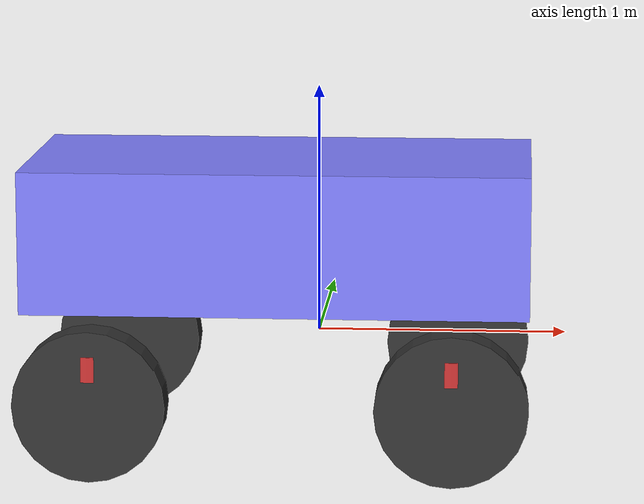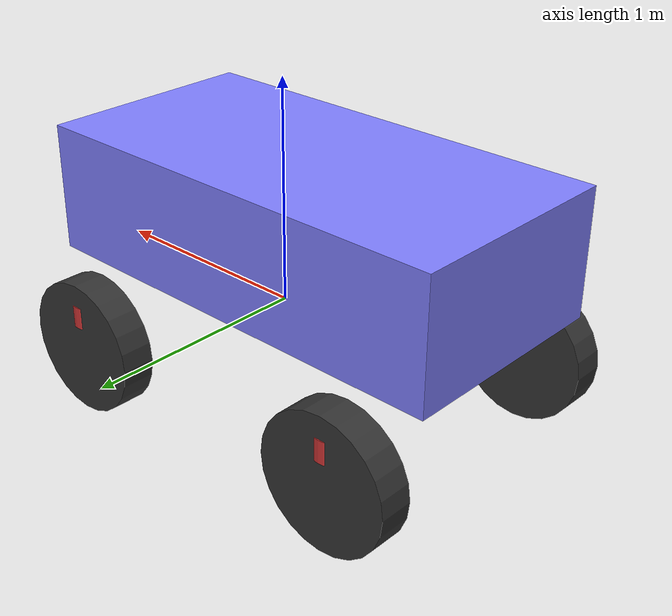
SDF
<?xml version="1.0" ?>
<sdf version="1.8">
  <model name='swerve_drive'>

    <!-- =========================== CHASSIS =========================== -->
    <link name='chassis'>
      <pose>-0.151427 0 0.43 0 0 0</pose>
      <inertial>
        <mass>1.14395</mass>
        <inertia>
          <ixx>0.126164</ixx>
          <ixy>0</ixy>
          <ixz>0</ixz>
          <iyy>0.416519</iyy>
          <iyz>0</iyz>
          <izz>0.481014</izz>
        </inertia>
      </inertial>
      <visual name='visual_chassis'>
        <geometry>
          <box>
            <size>2.01142 1 0.568726</size>
          </box>
        </geometry>
        <material>
          <ambient>0.5 0.5 1.0 1</ambient>
          <diffuse>0.5 0.5 1.0 1</diffuse>
          <specular>0.0 0.0 1.0 1</specular>
        </material>
      </visual>
      <collision name='collision_chassis'>
        <geometry>
          <box>
            <size>2.01142 1 0.568726</size>
          </box>
        </geometry>
      </collision>
    </link>

    <!-- =========================== LIDAR =========================== -->
    <link name="lidar_link">
      <pose>0 0 0.5 0 0 0</pose>
      <inertial>
        <mass>0.1</mass>
        <inertia>
          <ixx>0.000166667</ixx>
          <iyy>0.000166667</iyy>
          <izz>0.000166667</izz>
        </inertia>
      </inertial>
      <collision name="collision">
        <geometry>
          <box>
            <size>0.1 0.1 0.1</size>
          </box>
        </geometry>
      </collision>
      <visual name="visual">
        <geometry>
          <box>
            <size>0.1 0.1 0.1</size>
          </box>
        </geometry>
      </visual>
      <sensor name='gpu_lidar' type='gpu_lidar'>
        <pose>0 0 0 0 0 0</pose>
        <topic>scan</topic>
        <ignition_frame_id>swerve_drive/lidar_link</ignition_frame_id>
        <update_rate>10</update_rate>
        <lidar>
          <scan>
            <horizontal>
              <samples>640</samples>
              <resolution>1</resolution>
              <min_angle>-1.396263</min_angle>
              <max_angle>1.396263</max_angle>
            </horizontal>
            <vertical>
              <samples>1</samples>
              <resolution>1</resolution>
              <min_angle>0.0</min_angle>
              <max_angle>0.0</max_angle>
            </vertical>
          </scan>
          <range>
            <min>0.08</min>
            <max>10.0</max>
            <resolution>0.01</resolution>
          </range>
        </lidar>
        <visualize>true</visualize>
      </sensor>
    </link>

    <joint name='lidar_joint' type='fixed'>
      <parent>chassis</parent>
      <child>lidar_link</child>
    </joint>

    <link name='front_left_steering_link'>
      <pose>0.554283 0.625029 -0.025 0 0 0</pose>
      <inertial>
        <mass>0.5</mass>
        <inertia>
          <ixx>0.001</ixx>
          <ixy>0</ixy>
          <ixz>0</ixz>
          <iyy>0.001</iyy>
          <iyz>0</iyz>
          <izz>0.001</izz>
        </inertia>
      </inertial>
      <visual name='visual_front_left_steering'>
        <geometry>
          <cylinder>
            <radius>0.08</radius>
            <length>0.1</length>
          </cylinder>
        </geometry>
        <material>
          <ambient>0.8 0.2 0.2 1</ambient>
          <diffuse>0.8 0.2 0.2 1</diffuse>
          <specular>0.2 0.2 0.2 1</specular>
        </material>
      </visual>
      <collision name='collision_front_left_steering'>
        <geometry>
          <cylinder>
            <radius>0.08</radius>
            <length>0.1</length>
          </cylinder>
        </geometry>
      </collision>
    </link>

    <link name='front_left_wheel'>
      <pose>0.554283 0.625029 -0.175 -1.5707 0 0</pose>
      <inertial>
        <mass>2</mass>
        <inertia>
          <ixx>0.145833</ixx>
          <ixy>0</ixy>
          <ixz>0</ixz>
          <iyy>0.145833</iyy>
          <iyz>0</iyz>
          <izz>0.125</izz>
        </inertia>
      </inertial>
      <visual name='visual_front_left_wheel'>
        <geometry>
          <cylinder>
            <radius>0.3</radius>
            <length>0.15</length>
          </cylinder>
        </geometry>
        <material>
          <ambient>0.2 0.2 0.2 1</ambient>
          <diffuse>0.2 0.2 0.2 1</diffuse>
          <specular>0.2 0.2 0.2 1</specular>
        </material>
      </visual>
      <collision name='collision_front_left_wheel'>
        <geometry>
          <cylinder>
            <radius>0.3</radius>
            <length>0.15</length>
          </cylinder>
        </geometry>
        <surface>
          <friction>
            <ode>
              <mu>1.2</mu>
              <mu2>1.0</mu2>
              <fdir1>0 0 1</fdir1>
              <slip1>0.0</slip1>
              <slip2>0.0</slip2>
            </ode>
          </friction>
          <contact>
            <ode>
              <kp>1e6</kp>
              <kd>100</kd>
              <min_depth>0.001</min_depth>
            </ode>
          </contact>
        </surface>
      </collision>
    </link>

    <joint name='front_left_steering_joint' type='revolute'>
      <parent>chassis</parent>
      <child>front_left_steering_link</child>
      <axis>
        <xyz>0 0 1</xyz>
        <limit>
          <lower>-3.14159</lower>
          <upper>3.14159</upper>
          <effort>50</effort>
          <velocity>5</velocity>
        </limit>
        <dynamics>
          <damping>0.2</damping>
          <friction>0.05</friction>
        </dynamics>
      </axis>
    </joint>

    <joint name='front_left_wheel_joint' type='revolute'>
      <parent>front_left_steering_link</parent>
      <child>front_left_wheel</child>
      <axis>
        <xyz>0 0 1</xyz>
        <limit>
          <lower>-1.79769e+308</lower>
          <upper>1.79769e+308</upper>
          <effort>50</effort>
          <velocity>50</velocity>
        </limit>
        <dynamics>
          <damping>0.05</damping>
          <friction>0.02</friction>
        </dynamics>
      </axis>
    </joint>

    <link name='front_right_steering_link'>
      <pose>0.554283 -0.625029 -0.025 0 0 0</pose>
      <inertial>
        <mass>0.5</mass>
        <inertia>
          <ixx>0.001</ixx>
          <ixy>0</ixy>
          <ixz>0</ixz>
          <iyy>0.001</iyy>
          <iyz>0</iyz>
          <izz>0.001</izz>
        </inertia>
      </inertial>
      <visual name='visual_front_right_steering'>
        <geometry>
          <cylinder>
            <radius>0.08</radius>
            <length>0.1</length>
          </cylinder>
        </geometry>
        <material>
          <ambient>0.8 0.2 0.2 1</ambient>
          <diffuse>0.8 0.2 0.2 1</diffuse>
          <specular>0.2 0.2 0.2 1</specular>
        </material>
      </visual>
      <collision name='collision_front_right_steering'>
        <geometry>
          <cylinder>
            <radius>0.08</radius>
            <length>0.1</length>
          </cylinder>
        </geometry>
      </collision>
    </link>

    <link name='front_right_wheel'>
      <pose>0.554283 -0.625029 -0.175 -1.5707 0 0</pose>
      <inertial>
        <mass>2</mass>
        <inertia>
          <ixx>0.145833</ixx>
          <ixy>0</ixy>
          <ixz>0</ixz>
          <iyy>0.145833</iyy>
          <iyz>0</iyz>
          <izz>0.125</izz>
        </inertia>
      </inertial>
      <visual name='visual_front_right_wheel'>
        <geometry>
          <cylinder>
            <radius>0.3</radius>
            <length>0.15</length>
          </cylinder>
        </geometry>
        <material>
          <ambient>0.2 0.2 0.2 1</ambient>
          <diffuse>0.2 0.2 0.2 1</diffuse>
          <specular>0.2 0.2 0.2 1</specular>
        </material>
      </visual>
      <collision name='collision_front_right_wheel'>
        <geometry>
          <cylinder>
            <radius>0.3</radius>
            <length>0.15</length>
          </cylinder>
        </geometry>
        <surface>
          <friction>
            <ode>
              <mu>1.2</mu>
              <mu2>1.0</mu2>
              <fdir1>0 0 1</fdir1>
              <slip1>0.0</slip1>
              <slip2>0.0</slip2>
            </ode>
          </friction>
          <contact>
            <ode>
              <kp>1e6</kp>
              <kd>100</kd>
              <min_depth>0.001</min_depth>
            </ode>
          </contact>
        </surface>
      </collision>
    </link>

    <joint name='front_right_steering_joint' type='revolute'>
      <parent>chassis</parent>
      <child>front_right_steering_link</child>
      <axis>
        <xyz>0 0 1</xyz>
        <limit>
          <lower>-3.14159</lower>
          <upper>3.14159</upper>
          <effort>50</effort>
          <velocity>5</velocity>
        </limit>
        <dynamics>
          <damping>0.2</damping>
          <friction>0.05</friction>
        </dynamics>
      </axis>
    </joint>

    <joint name='front_right_wheel_joint' type='revolute'>
      <parent>front_right_steering_link</parent>
      <child>front_right_wheel</child>
      <axis>
        <xyz>0 0 1</xyz>
        <limit>
          <lower>-1.79769e+308</lower>
          <upper>1.79769e+308</upper>
          <effort>50</effort>
          <velocity>50</velocity>
        </limit>
        <dynamics>
          <damping>0.05</damping>
          <friction>0.02</friction>
        </dynamics>
      </axis>
    </joint>

    <link name='back_left_steering_link'>
      <pose>-0.857138 0.625029 -0.025 0 0 0</pose>
      <inertial>
        <mass>0.5</mass>
        <inertia>
          <ixx>0.001</ixx>
          <ixy>0</ixy>
          <ixz>0</ixz>
          <iyy>0.001</iyy>
          <iyz>0</iyz>
          <izz>0.001</izz>
        </inertia>
      </inertial>
      <visual name='visual_back_left_steering'>
        <geometry>
          <cylinder>
            <radius>0.08</radius>
            <length>0.1</length>
          </cylinder>
        </geometry>
        <material>
          <ambient>0.8 0.2 0.2 1</ambient>
          <diffuse>0.8 0.2 0.2 1</diffuse>
          <specular>0.2 0.2 0.2 1</specular>
        </material>
      </visual>
      <collision name='collision_back_left_steering'>
        <geometry>
          <cylinder>
            <radius>0.08</radius>
            <length>0.1</length>
          </cylinder>
        </geometry>
      </collision>
    </link>

    <link name='back_left_wheel'>
      <pose>-0.857138 0.625029 -0.175 -1.5707 0 0</pose>
      <inertial>
        <mass>2</mass>
        <inertia>
          <ixx>0.145833</ixx>
          <ixy>0</ixy>
          <ixz>0</ixz>
          <iyy>0.145833</iyy>
          <iyz>0</iyz>
          <izz>0.125</izz>
        </inertia>
      </inertial>
      <visual name='visual_back_left_wheel'>
        <geometry>
          <cylinder>
            <radius>0.3</radius>
            <length>0.15</length>
          </cylinder>
        </geometry>
        <material>
          <ambient>0.2 0.2 0.2 1</ambient>
          <diffuse>0.2 0.2 0.2 1</diffuse>
          <specular>0.2 0.2 0.2 1</specular>
        </material>
      </visual>
      <collision name='collision_back_left_wheel'>
        <geometry>
          <cylinder>
            <radius>0.3</radius>
            <length>0.15</length>
          </cylinder>
        </geometry>
        <surface>
          <friction>
            <ode>
              <mu>1.2</mu>
              <mu2>1.0</mu2>
              <fdir1>0 0 1</fdir1>
              <slip1>0.0</slip1>
              <slip2>0.0</slip2>
            </ode>
          </friction>
          <contact>
            <ode>
              <kp>1e6</kp>
              <kd>100</kd>
              <min_depth>0.001</min_depth>
            </ode>
          </contact>
        </surface>
      </collision>
    </link>

    <joint name='back_left_steering_joint' type='revolute'>
      <parent>chassis</parent>
      <child>back_left_steering_link</child>
      <axis>
        <xyz>0 0 1</xyz>
        <limit>
          <lower>-3.14159</lower>
          <upper>3.14159</upper>
          <effort>50</effort>
          <velocity>5</velocity>
        </limit>
        <dynamics>
          <damping>0.2</damping>
          <friction>0.05</friction>
        </dynamics>
      </axis>
    </joint>

    <joint name='back_left_wheel_joint' type='revolute'>
      <parent>back_left_steering_link</parent>
      <child>back_left_wheel</child>
      <axis>
        <xyz>0 0 1</xyz>
        <limit>
          <lower>-1.79769e+308</lower>
          <upper>1.79769e+308</upper>
          <effort>50</effort>
          <velocity>50</velocity>
        </limit>
        <dynamics>
          <damping>0.05</damping>
          <friction>0.02</friction>
        </dynamics>
      </axis>
    </joint>

    <link name='back_right_steering_link'>
      <pose>-0.857138 -0.625029 -0.025 0 0 0</pose>
      <inertial>
        <mass>0.5</mass>
        <inertia>
          <ixx>0.001</ixx>
          <ixy>0</ixy>
          <ixz>0</ixz>
          <iyy>0.001</iyy>
          <iyz>0</iyz>
          <izz>0.001</izz>
        </inertia>
      </inertial>
      <visual name='visual_back_right_steering'>
        <geometry>
          <cylinder>
            <radius>0.08</radius>
            <length>0.1</length>
          </cylinder>
        </geometry>
        <material>
          <ambient>0.8 0.2 0.2 1</ambient>
          <diffuse>0.8 0.2 0.2 1</diffuse>
          <specular>0.2 0.2 0.2 1</specular>
        </material>
      </visual>
      <collision name='collision_back_right_steering'>
        <geometry>
          <cylinder>
            <radius>0.08</radius>
            <length>0.1</length>
          </cylinder>
        </geometry>
      </collision>
    </link>

    <link name='back_right_wheel'>
      <pose>-0.857138 -0.625029 -0.175 -1.5707 0 0</pose>
      <inertial>
        <mass>2</mass>
        <inertia>
          <ixx>0.145833</ixx>
          <ixy>0</ixy>
          <ixz>0</ixz>
          <iyy>0.145833</iyy>
          <iyz>0</iyz>
          <izz>0.125</izz>
        </inertia>
      </inertial>
      <visual name='visual_back_right_wheel'>
        <geometry>
          <cylinder>
            <radius>0.3</radius>
            <length>0.15</length>
          </cylinder>
        </geometry>
        <material>
          <ambient>0.2 0.2 0.2 1</ambient>
          <diffuse>0.2 0.2 0.2 1</diffuse>
          <specular>0.2 0.2 0.2 1</specular>
        </material>
      </visual>
      <collision name='collision_back_right_wheel'>
        <geometry>
          <cylinder>
            <radius>0.3</radius>
            <length>0.15</length>
          </cylinder>
        </geometry>
        <surface>
          <friction>
            <ode>
              <mu>1.2</mu>
              <mu2>1.0</mu2>
              <fdir1>0 0 1</fdir1>
              <slip1>0.0</slip1>
              <slip2>0.0</slip2>
            </ode>
          </friction>
          <contact>
            <ode>
              <kp>1e6</kp>
              <kd>100</kd>
              <min_depth>0.001</min_depth>
            </ode>
          </contact>
        </surface>
      </collision>
    </link>

    <joint name='back_right_steering_joint' type='revolute'>
      <parent>chassis</parent>
      <child>back_right_steering_link</child>
      <axis>
        <xyz>0 0 1</xyz>
        <limit>
          <lower>-3.14159</lower>
          <upper>3.14159</upper>
          <effort>50</effort>
          <velocity>5</velocity>
        </limit>
        <dynamics>
          <damping>0.2</damping>
          <friction>0.05</friction>
        </dynamics>
      </axis>
    </joint>

    <joint name='back_right_wheel_joint' type='revolute'>
      <parent>back_right_steering_link</parent>
      <child>back_right_wheel</child>
      <axis>
        <xyz>0 0 1</xyz>
        <limit>
          <lower>-1.79769e+308</lower>
          <upper>1.79769e+308</upper>
          <effort>50</effort>
          <velocity>50</velocity>
        </limit>
        <dynamics>
          <damping>0.05</damping>
          <friction>0.02</friction>
        </dynamics>
      </axis>
    </joint>

    <!-- =========================== CONTROLLER =========================== -->
    <plugin
      filename="SwerveSystem"
      name="ros_gz_example_gazebo::SwerveSystem">

      <front_left_steering_joint>front_left_steering_joint</front_left_steering_joint>
      <front_left_wheel_joint>front_left_wheel_joint</front_left_wheel_joint>

      <front_right_steering_joint>front_right_steering_joint</front_right_steering_joint>
      <front_right_wheel_joint>front_right_wheel_joint</front_right_wheel_joint>

      <back_left_steering_joint>back_left_steering_joint</back_left_steering_joint>
      <back_left_wheel_joint>back_left_wheel_joint</back_left_wheel_joint>

      <back_right_steering_joint>back_right_steering_joint</back_right_steering_joint>
      <back_right_wheel_joint>back_right_wheel_joint</back_right_wheel_joint>

      <!-- geometry: distance between front/back axles and left/right wheels -->
      <wheel_base>1.41142</wheel_base>
      <track_width>1.250058</track_width>
      <wheel_radius>0.3</wheel_radius>

      <!-- friction / traction model params (consumed by controller for
           slip-aware velocity limiting, not just the ODE surface above) -->
      <wheel_friction_coefficient>1.2</wheel_friction_coefficient>
      <max_wheel_torque>20</max_wheel_torque>

      <odom_publish_frequency>50</odom_publish_frequency>

      <max_linear_acceleration>1</max_linear_acceleration>
      <min_linear_acceleration>-1</min_linear_acceleration>
      <max_angular_acceleration>2</max_angular_acceleration>
      <min_angular_acceleration>-2</min_angular_acceleration>

      <max_linear_velocity>0.5</max_linear_velocity>
      <min_linear_velocity>-0.5</min_linear_velocity>
      <max_angular_velocity>1</max_angular_velocity>
      <min_angular_velocity>-1</min_angular_velocity>

      <!-- max steering rate of each module, rad/s -->
      <max_steering_velocity>5</max_steering_velocity>
    </plugin>

  </model>
</sdf>
